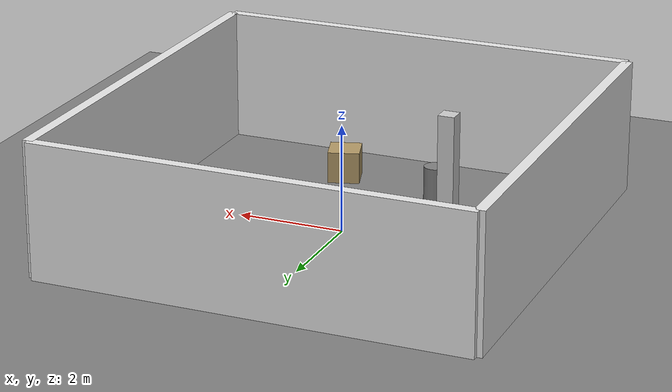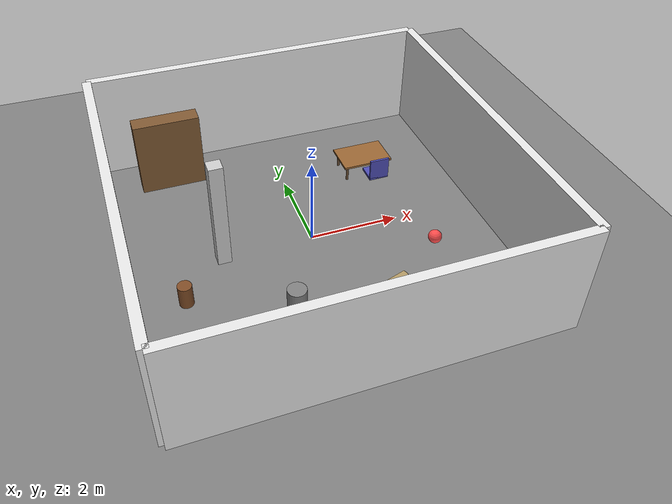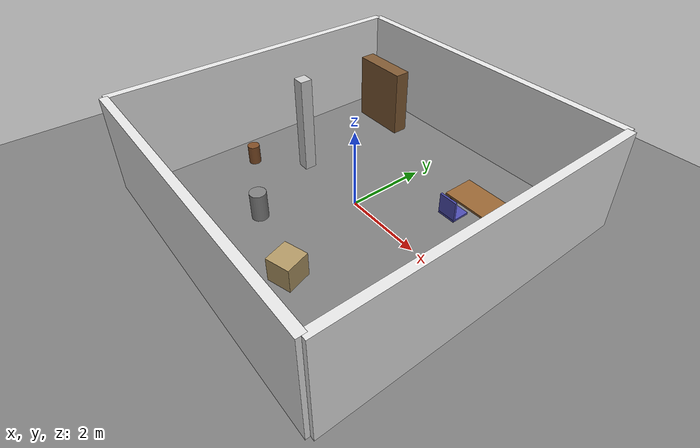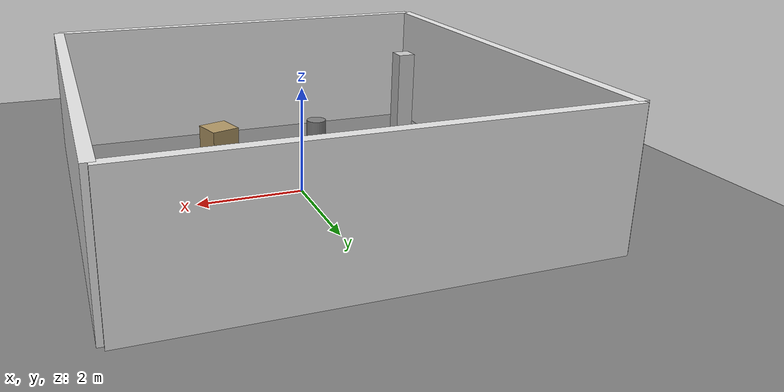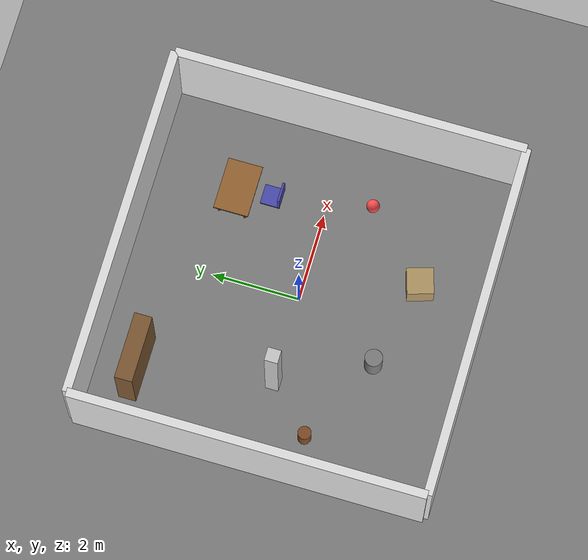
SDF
<?xml version="1.0" ?>
<sdf version="1.9">
  <world name="mrc_test_world">

    <!-- Physics -->
    <physics type="ode">
      <max_step_size>0.001</max_step_size>
      <real_time_factor>1</real_time_factor>
      <real_time_update_rate>1000</real_time_update_rate>
    </physics>

    <!-- Required plugins -->
    <plugin name="gz::sim::systems::Physics" filename="gz-sim-physics-system"/>
    <plugin name="gz::sim::systems::UserCommands" filename="gz-sim-user-commands-system"/>
    <plugin name="gz::sim::systems::SceneBroadcaster" filename="gz-sim-scene-broadcaster-system"/>
    <plugin name="gz::sim::systems::Sensors" filename="gz-sim-sensors-system">
      <render_engine>ogre2</render_engine>
    </plugin>
    <plugin name="gz::sim::systems::Imu" filename="gz-sim-imu-system"/>
    <plugin name="gz::sim::systems::Contact" filename="gz-sim-contact-system"/>

    <!-- RGL LiDAR Manager Plugin -->
    <plugin name="rgl::RGLServerPluginManager" filename="RGLServerPluginManager">
      <do_ignore_entities_in_lidar_link>true</do_ignore_entities_in_lidar_link>
    </plugin>

    <!-- Lighting -->
    <light type="directional" name="sun">
      <cast_shadows>true</cast_shadows>
      <pose>0 0 10 0 0 0</pose>
      <diffuse>0.8 0.8 0.8 1</diffuse>
      <specular>0.2 0.2 0.2 1</specular>
      <attenuation>
        <range>1000</range>
        <constant>0.9</constant>
        <linear>0.01</linear>
        <quadratic>0.001</quadratic>
      </attenuation>
      <direction>-0.5 0.1 -0.9</direction>
    </light>

    <!-- Ground plane -->
    <model name="ground_plane">
      <static>true</static>
      <link name="link">
        <collision name="collision">
          <geometry>
            <plane>
              <normal>0 0 1</normal>
              <size>20 20</size>
            </plane>
          </geometry>
        </collision>
        <visual name="visual">
          <geometry>
            <plane>
              <normal>0 0 1</normal>
              <size>20 20</size>
            </plane>
          </geometry>
          <material>
            <ambient>0.3 0.3 0.3 1</ambient>
            <diffuse>0.5 0.5 0.5 1</diffuse>
          </material>
        </visual>
      </link>
    </model>

    <!-- Room walls (8m x 8m room) -->
    <!-- Wall North -->
    <model name="wall_north">
      <static>true</static>
      <pose>0 4 1.25 0 0 0</pose>
      <link name="link">
        <collision name="collision">
          <geometry>
            <box><size>8 0.2 2.5</size></box>
          </geometry>
        </collision>
        <visual name="visual">
          <geometry>
            <box><size>8 0.2 2.5</size></box>
          </geometry>
          <material>
            <ambient>0.7 0.7 0.7 1</ambient>
            <diffuse>0.9 0.9 0.9 1</diffuse>
            <laser_retro>1.0</laser_retro>
          </material>
        </visual>
      </link>
    </model>

    <!-- Wall South -->
    <model name="wall_south">
      <static>true</static>
      <pose>0 -4 1.25 0 0 0</pose>
      <link name="link">
        <collision name="collision">
          <geometry>
            <box><size>8 0.2 2.5</size></box>
          </geometry>
        </collision>
        <visual name="visual">
          <geometry>
            <box><size>8 0.2 2.5</size></box>
          </geometry>
          <material>
            <ambient>0.7 0.7 0.7 1</ambient>
            <diffuse>0.9 0.9 0.9 1</diffuse>
            <laser_retro>1.0</laser_retro>
          </material>
        </visual>
      </link>
    </model>

    <!-- Wall East -->
    <model name="wall_east">
      <static>true</static>
      <pose>4 0 1.25 0 0 0</pose>
      <link name="link">
        <collision name="collision">
          <geometry>
            <box><size>0.2 8 2.5</size></box>
          </geometry>
        </collision>
        <visual name="visual">
          <geometry>
            <box><size>0.2 8 2.5</size></box>
          </geometry>
          <material>
            <ambient>0.7 0.7 0.7 1</ambient>
            <diffuse>0.9 0.9 0.9 1</diffuse>
            <laser_retro>1.0</laser_retro>
          </material>
        </visual>
      </link>
    </model>

    <!-- Wall West -->
    <model name="wall_west">
      <static>true</static>
      <pose>-4 0 1.25 0 0 0</pose>
      <link name="link">
        <collision name="collision">
          <geometry>
            <box><size>0.2 8 2.5</size></box>
          </geometry>
        </collision>
        <visual name="visual">
          <geometry>
            <box><size>0.2 8 2.5</size></box>
          </geometry>
          <material>
            <ambient>0.7 0.7 0.7 1</ambient>
            <diffuse>0.9 0.9 0.9 1</diffuse>
            <laser_retro>1.0</laser_retro>
          </material>
        </visual>
      </link>
    </model>

    <!-- Table -->
    <model name="table">
      <static>true</static>
      <pose>2 2 0.4 0 0 0</pose>
      <link name="link">
        <!-- Table top -->
        <collision name="top_collision">
          <pose>0 0 0 0 0 0</pose>
          <geometry>
            <box><size>1.2 0.8 0.05</size></box>
          </geometry>
        </collision>
        <visual name="top_visual">
          <pose>0 0 0 0 0 0</pose>
          <geometry>
            <box><size>1.2 0.8 0.05</size></box>
          </geometry>
          <material>
            <ambient>0.5 0.3 0.1 1</ambient>
            <diffuse>0.6 0.4 0.2 1</diffuse>
            <laser_retro>0.8</laser_retro>
          </material>
        </visual>
        <!-- Leg 1 -->
        <collision name="leg1_collision">
          <pose>0.5 0.3 -0.2 0 0 0</pose>
          <geometry>
            <cylinder><radius>0.03</radius><length>0.4</length></cylinder>
          </geometry>
        </collision>
        <visual name="leg1_visual">
          <pose>0.5 0.3 -0.2 0 0 0</pose>
          <geometry>
            <cylinder><radius>0.03</radius><length>0.4</length></cylinder>
          </geometry>
          <material>
            <ambient>0.3 0.2 0.1 1</ambient>
            <diffuse>0.4 0.3 0.2 1</diffuse>
          </material>
        </visual>
        <!-- Leg 2 -->
        <collision name="leg2_collision">
          <pose>-0.5 0.3 -0.2 0 0 0</pose>
          <geometry>
            <cylinder><radius>0.03</radius><length>0.4</length></cylinder>
          </geometry>
        </collision>
        <visual name="leg2_visual">
          <pose>-0.5 0.3 -0.2 0 0 0</pose>
          <geometry>
            <cylinder><radius>0.03</radius><length>0.4</length></cylinder>
          </geometry>
          <material>
            <ambient>0.3 0.2 0.1 1</ambient>
            <diffuse>0.4 0.3 0.2 1</diffuse>
          </material>
        </visual>
        <!-- Leg 3 -->
        <collision name="leg3_collision">
          <pose>0.5 -0.3 -0.2 0 0 0</pose>
          <geometry>
            <cylinder><radius>0.03</radius><length>0.4</length></cylinder>
          </geometry>
        </collision>
        <visual name="leg3_visual">
          <pose>0.5 -0.3 -0.2 0 0 0</pose>
          <geometry>
            <cylinder><radius>0.03</radius><length>0.4</length></cylinder>
          </geometry>
          <material>
            <ambient>0.3 0.2 0.1 1</ambient>
            <diffuse>0.4 0.3 0.2 1</diffuse>
          </material>
        </visual>
        <!-- Leg 4 -->
        <collision name="leg4_collision">
          <pose>-0.5 -0.3 -0.2 0 0 0</pose>
          <geometry>
            <cylinder><radius>0.03</radius><length>0.4</length></cylinder>
          </geometry>
        </collision>
        <visual name="leg4_visual">
          <pose>-0.5 -0.3 -0.2 0 0 0</pose>
          <geometry>
            <cylinder><radius>0.03</radius><length>0.4</length></cylinder>
          </geometry>
          <material>
            <ambient>0.3 0.2 0.1 1</ambient>
            <diffuse>0.4 0.3 0.2 1</diffuse>
          </material>
        </visual>
      </link>
    </model>

    <!-- Chair -->
    <model name="chair">
      <static>true</static>
      <pose>2 1.2 0 0 0 0</pose>
      <link name="link">
        <!-- Seat -->
        <collision name="seat_collision">
          <pose>0 0 0.45 0 0 0</pose>
          <geometry>
            <box><size>0.45 0.45 0.05</size></box>
          </geometry>
        </collision>
        <visual name="seat_visual">
          <pose>0 0 0.45 0 0 0</pose>
          <geometry>
            <box><size>0.45 0.45 0.05</size></box>
          </geometry>
          <material>
            <ambient>0.2 0.2 0.5 1</ambient>
            <diffuse>0.3 0.3 0.7 1</diffuse>
            <laser_retro>0.6</laser_retro>
          </material>
        </visual>
        <!-- Backrest -->
        <collision name="back_collision">
          <pose>0 -0.2 0.7 0 0 0</pose>
          <geometry>
            <box><size>0.45 0.05 0.5</size></box>
          </geometry>
        </collision>
        <visual name="back_visual">
          <pose>0 -0.2 0.7 0 0 0</pose>
          <geometry>
            <box><size>0.45 0.05 0.5</size></box>
          </geometry>
          <material>
            <ambient>0.2 0.2 0.5 1</ambient>
            <diffuse>0.3 0.3 0.7 1</diffuse>
          </material>
        </visual>
      </link>
    </model>

    <!-- Bookshelf -->
    <model name="bookshelf">
      <static>true</static>
      <pose>-2.5 3 0.9 0 0 0</pose>
      <link name="link">
        <collision name="collision">
          <geometry>
            <box><size>1.5 0.4 1.8</size></box>
          </geometry>
        </collision>
        <visual name="visual">
          <geometry>
            <box><size>1.5 0.4 1.8</size></box>
          </geometry>
          <material>
            <ambient>0.4 0.25 0.1 1</ambient>
            <diffuse>0.5 0.35 0.2 1</diffuse>
            <laser_retro>0.9</laser_retro>
          </material>
        </visual>
      </link>
    </model>

    <!-- Cylinder obstacle (like a trash can) -->
    <model name="trash_can">
      <static>true</static>
      <pose>-1 -2 0.35 0 0 0</pose>
      <link name="link">
        <collision name="collision">
          <geometry>
            <cylinder><radius>0.2</radius><length>0.7</length></cylinder>
          </geometry>
        </collision>
        <visual name="visual">
          <geometry>
            <cylinder><radius>0.2</radius><length>0.7</length></cylinder>
          </geometry>
          <material>
            <ambient>0.3 0.3 0.3 1</ambient>
            <diffuse>0.5 0.5 0.5 1</diffuse>
            <laser_retro>1.2</laser_retro>
          </material>
        </visual>
      </link>
    </model>

    <!-- Box (like a crate) -->
    <model name="crate">
      <static>true</static>
      <pose>1 -2.5 0.3 0 0 0.3</pose>
      <link name="link">
        <collision name="collision">
          <geometry>
            <box><size>0.6 0.6 0.6</size></box>
          </geometry>
        </collision>
        <visual name="visual">
          <geometry>
            <box><size>0.6 0.6 0.6</size></box>
          </geometry>
          <material>
            <ambient>0.6 0.5 0.3 1</ambient>
            <diffuse>0.7 0.6 0.4 1</diffuse>
            <laser_retro>0.7</laser_retro>
          </material>
        </visual>
      </link>
    </model>

    <!-- Sphere (like a ball) -->
    <model name="ball">
      <static>true</static>
      <pose>2.5 -1 0.15 0 0 0</pose>
      <link name="link">
        <collision name="collision">
          <geometry>
            <sphere><radius>0.15</radius></sphere>
          </geometry>
        </collision>
        <visual name="visual">
          <geometry>
            <sphere><radius>0.15</radius></sphere>
          </geometry>
          <material>
            <ambient>0.8 0.2 0.2 1</ambient>
            <diffuse>1.0 0.3 0.3 1</diffuse>
            <laser_retro>0.5</laser_retro>
          </material>
        </visual>
      </link>
    </model>

    <!-- Plant pot -->
    <model name="plant_pot">
      <static>true</static>
      <pose>-3 -1 0.25 0 0 0</pose>
      <link name="link">
        <collision name="collision">
          <geometry>
            <cylinder><radius>0.15</radius><length>0.5</length></cylinder>
          </geometry>
        </collision>
        <visual name="visual">
          <geometry>
            <cylinder><radius>0.15</radius><length>0.5</length></cylinder>
          </geometry>
          <material>
            <ambient>0.4 0.25 0.1 1</ambient>
            <diffuse>0.5 0.3 0.15 1</diffuse>
            <laser_retro>0.8</laser_retro>
          </material>
        </visual>
      </link>
    </model>

    <!-- Pillar -->
    <model name="pillar">
      <static>true</static>
      <pose>-2 0 1.25 0 0 0</pose>
      <link name="link">
        <collision name="collision">
          <geometry>
            <box><size>0.3 0.3 2.5</size></box>
          </geometry>
        </collision>
        <visual name="visual">
          <geometry>
            <box><size>0.3 0.3 2.5</size></box>
          </geometry>
          <material>
            <ambient>0.6 0.6 0.6 1</ambient>
            <diffuse>0.8 0.8 0.8 1</diffuse>
            <laser_retro>1.0</laser_retro>
          </material>
        </visual>
      </link>
    </model>

  </world>
</sdf>
